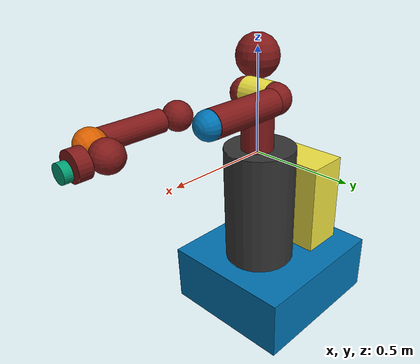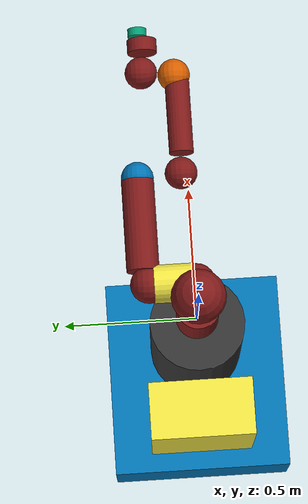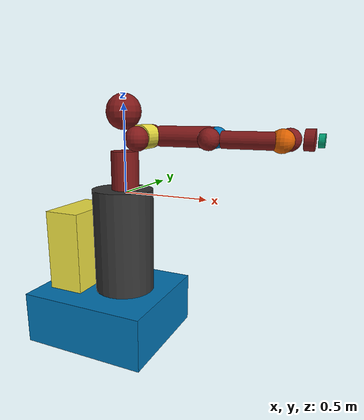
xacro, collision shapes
<?xml version="1.0" ?>
<robot name="sawyer" xmlns:xacro="http://www.ros.org/wiki/xacro">

  <xacro:arg name="gazebo" default="false"/>
  <xacro:arg name="pedestal" default="true"/>
  <xacro:arg name="static" default="true"/>
  <xacro:arg name="electric_gripper" default="false"/>
  <!-- Sawyer Base URDF -->
  <xacro:include filename="$(find sawyer_robot)/urdf/sawyer_base.urdf_rviz.xacro">
    <xacro:arg name="gazebo" value="${gazebo}"/>
    <xacro:arg name="pedestal" value="${pedestal}"/>
  </xacro:include>
  <xacro:if value="$(arg gazebo)">
  <xacro:include filename="$(find sawyer_robot)/urdf/sawyer_base.gazebo.xacro">
    <xacro:arg name="static" value="${static}"/>
    <xacro:arg name="pedestal" value="${pedestal}"/>
  </xacro:include>
  </xacro:if>
  <!-- Electric Gripper End Effector -->
  <xacro:if value="$(arg electric_gripper)">
  <xacro:include filename="$(find sawyer_robot)/urdf/sawyer_electric_gripper.urdf.xacro">
    <xacro:arg name="gazebo" value="${gazebo}"/>
  </xacro:include>
  </xacro:if>

</robot>

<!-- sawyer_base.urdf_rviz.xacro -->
<robot name="sawyer" xmlns:xacro="http://www.ros.org/wiki/xacro">

  <xacro:arg name="gazebo" default="false"/>
  <xacro:arg name="pedestal" default="true"/>
  <material name="black">
    <color rgba="0 0 0 1"/>
  </material>
  <material name="darkgray">
    <color rgba=".2 .2 .2 1"/>
  </material>
  <material name="darkred">
    <color rgba=".5 .1 .1 1"/>
  </material>
  <material name="sawyer_red">
    <color rgba=".5 .1 .1 1"/>
  </material>
  <material name="sawyer_gray">
    <color rgba="0.75294 0.75294 0.75294 1"/>
  </material>prefix="" joint_limited="true"
  <!--base_link-->
  <link name="base"/>
  <link name="torso">
    <visual>
      <origin rpy="0 0 0" xyz="0 0 0"/>
      <geometry>
        <box size="0.001 0.001 0.001"/>
      </geometry>
      <material name="darkgray">
        <color rgba=".2 .2 .2 1"/>
      </material>
    </visual>
<xacro:unless value="$(arg gazebo)">
    <inertial>
      <origin rpy="0 0 0" xyz="0.000000 0.000000 0.000000"/>
      <mass value="0.0001"/>
      <inertia ixx="1e-08" ixy="0"
               ixz="0" iyy="1e-08"
               iyz="0" izz="1e-08"/>
    </inertial>
</xacro:unless>
  </link>
<!--pedestal link-->
<xacro:if value="$(arg pedestal)">
  <link name="pedestal">
    <visual>
      <origin rpy="1.57079632679 0 -1.57079632679"
              xyz="0.26 0.345 -0.91488"/>
      <geometry>
        <mesh filename="package://sawyer_robot/meshes/sawyer_pv/pedestal.DAE"/>
      </geometry>
      <material name="darkgray"/>
    </visual>
    <collision>
      <origin rpy="0 0 0" xyz="-0.02 0 -0.29"/>
      <geometry>
        <cylinder length="0.62" radius="0.18"/>
      </geometry>
    </collision>
    <inertial>
      <origin rpy="0 0 0" xyz="0 0 -0.5"/>
      <mass value="60.86397744"/>
      <inertia ixx="5.0635929"  ixy="0.00103417"
               ixz="0.80199628" iyy="6.08689388"
               iyz="0.00105311" izz="4.96191932"/>
    </inertial>
  </link>
  <link name="controller_box">
    <collision>
      <origin rpy="0 0 0" xyz="-0.325 0 -0.38"/>
      <geometry>
        <box size="0.22 0.4 0.53"/>
      </geometry>
    </collision>
  </link>
  <joint name="controller_box_fixed" type="fixed">
    <origin rpy="0 0 0" xyz="0.0 0.0 0.0"/>
    <parent link="base"/>
    <child link="controller_box"/>
  </joint>
  <link name="pedestal_feet">
    <collision>
      <origin rpy="0 0 0" xyz="-0.1225 0 -0.758"/>
      <geometry>
        <box size="0.77 0.7 0.31"/>
      </geometry>
    </collision>
  </link>
  <joint name="pedestal_feet_fixed" type="fixed">
    <origin rpy="0 0 0" xyz="0.0 0.0 0.0"/>
    <parent link="base"/>
    <child link="pedestal_feet"/>
  </joint>
  <joint name="pedestal_fixed" type="fixed">
    <origin rpy="0 0 0" xyz="0.0 0.0 0.0"/>
    <parent link="base"/>
    <child link="pedestal"/>
  </joint>
</xacro:if>
  <joint name="right_arm_mount" type="fixed">
    <origin rpy="0 0 0" xyz="0.0 0.0 0.0"/>
    <parent link="base"/>
    <child link="right_arm_base_link"/>
  </joint>
  <joint name="torso_t0" type="fixed">
    <origin rpy="0 0 0" xyz="0 0 0"/>
    <parent link="base"/>
    <child link="torso"/>
  </joint>
<!--right arm base link-->
  <link name="right_arm_base_link">
    <inertial>
      <origin rpy="0 0 0" xyz="-0.0006241 -2.8025E-05 0.065404"/>
      <mass value="2.0687"/>
      <inertia ixx="0.0067599"   ixy="-4.2024E-05"
               ixz="-6.1904E-07" iyy="0.0067877"
               iyz="1.5888E-05"  izz="0.0074031"/>
    </inertial>
    <visual>
      <origin rpy="0 0 0" xyz="0 0 0"/>
      <geometry>
        <mesh filename="package://sawyer_robot/meshes/sawyer_pv/base.DAE"/>
      </geometry>
      <material name="sawyer_red"/>
    </visual>
    <collision>
      <origin rpy="0 0 0" xyz="0 0 0.12"/>
      <geometry>
        <cylinder length="0.24" radius="0.08"/>
      </geometry>
    </collision>
  </link>
 <!--right_l0 link-->
  <link name="right_l0">
    <inertial>
      <origin rpy="0 0 0" xyz="0.024366 0.010969 0.14363"/>
      <mass value="5.3213"/>
      <inertia ixx="0.053314" ixy="0.0047093"
               ixz="0.011734" iyy="0.057902"
               iyz="0.0080179" izz="0.023659"/>
    </inertial>
    <visual>
      <origin rpy="0 0 0" xyz="0 0 0"/>
      <geometry>
        <mesh filename="package://sawyer_robot/meshes/sawyer_mp3/l0.DAE"/>
      </geometry>
      <material name="sawyer_red"/>
    </visual>
    <collision>
      <origin rpy="0 0 0" xyz="0.08 0 0.23"/>
      <geometry>
        <sphere radius="0.07"/>
      </geometry>
    </collision>
  </link>
  <!--right j0 joint-->
  <joint name="right_j0" type="revolute">
    <origin rpy="0 0 0" xyz="0 0 0.08"/>
    <parent link="right_arm_base_link"/>
    <child link="right_l0"/>
    <axis xyz="0 0 1"/>
    <limit effort="80.0" lower="-3.0503"
           upper="3.0503" velocity="1.74"/>
<xacro:if value="$(arg gazebo)">
    <dynamics damping="10.0" friction="5.0"/>
</xacro:if>
  </joint>
<gazebo reference="head">
  <visual>
    <material>
      <ambient>0.5 0.1 0.1 1</ambient>
      <diffuse>.5 .1 .1 1</diffuse>
      <specular>.5 .1 .1 1</specular>
      <emissive>0.0 0.0 0.0 0.0</emissive>
    </material>
  </visual>
</gazebo>
 <!--head lcd link-->
  <link name="head">
    <inertial>
      <origin rpy="0 0 0" xyz="0.0053207 -2.6549E-05 0.1021"/>
      <mass value="1.5795"/>
      <inertia ixx="0.011833"   ixy="-4.4669E-06"
               ixz="4.9425E-05" iyy="0.0082709"
               iyz="4.2124E-07" izz="0.0049661"/>
    </inertial>
    <visual>
      <origin rpy="0 0 0" xyz="0 0 0"/>
      <geometry>
        <mesh filename="package://sawyer_robot/meshes/sawyer_pv/head.STL"/>
      </geometry>
      <material name="sawyer_red"/>
    </visual>
    <collision>
      <origin rpy="0 0 0" xyz="0 0 0.08"/>
      <geometry>
        <sphere radius="0.1"/>
      </geometry>
    </collision>
  </link>
 <!-- head_pad joint-->
  <joint name="head_pan" type="revolute">
    <origin rpy="0 0 0" xyz="0 0 0.2965"/>
    <parent link="right_l0"/>
    <child link="head"/>
    <axis xyz="0 0 1"/>
    <limit effort="8" lower="-5.0952"
           upper="0.9064" velocity="1.8"/>
<xacro:if value="$(arg gazebo)">
    <dynamics damping="1.0" friction="0.5"/>
</xacro:if>
  </joint>
  <link name="right_torso_itb">
<xacro:unless value="$(arg gazebo)">
    <inertial>
      <origin rpy="0 0 0" xyz="0.000000 0.000000 0.000000"/>
      <mass value="0.0001"/>
      <inertia ixx="1e-08" ixy="0" ixz="0" iyy="1e-08" iyz="0" izz="1e-08"/>
    </inertial>
</xacro:unless>
  </link>
  <joint name="right_torso_itb" type="fixed">
    <origin rpy="0 -1.57079632679 0" xyz="-.055 0 .22"/>
    <parent link="right_l0"/>
    <child link="right_torso_itb"/>
    <axis xyz="0 0 1"/>
  </joint>
 <!--right_l1 link-->
 <link name="right_l1">
    <inertial>
      <origin rpy="0 0 0" xyz="-0.0030849 -0.026811 0.092521"/>
      <mass value="4.505"/>
      <inertia ixx="0.022398" ixy="-0.00023986"
               ixz="-0.00029362" iyy="0.014613"
               iyz="-0.0060875" izz="0.017295"/>
    </inertial>
    <visual>
      <origin rpy="0 0 0" xyz="0 0 0"/>
      <geometry>
        <mesh filename="package://sawyer_robot/meshes/sawyer_mp3/l1.DAE"/>
      </geometry>
      <material name="sawyer_red"/>
    </visual>
    <collision>
      <origin rpy="0 0 0" xyz="0 0 0.1225"/>
      <geometry>
        <sphere radius="0.07"/>
      </geometry>
    </collision>
  </link>
  <!--right_j1 joint -->
  <joint name="right_j1" type="revolute">
    <origin rpy="-1.57079632679 1.57079632679 0" xyz="0.081 0.05 0.237"/>
    <parent link="right_l0"/>
    <child link="right_l1"/>
    <axis xyz="0 0 1"/>
    <limit effort="80.0" lower="-3.8095" upper="2.2736" velocity="1.328"/>
<xacro:if value="$(arg gazebo)">
    <dynamics damping="5.0" friction="2.0"/>
</xacro:if>
  </joint>
 <!--right_l2 link-->
  <link name="right_l2">
    <inertial>
      <origin rpy="0 0 0" xyz="-0.00016044 -0.014967 0.13582"/>
      <mass value="1.745"/>
      <inertia ixx="0.025506" ixy="4.4101E-06"
               ixz="1.4955E-05" iyy="0.0253"
               iyz="-0.0033204" izz="0.0034179"/>
    </inertial>
    <visual>
      <origin rpy="0 0 0" xyz="0 0 0"/>
      <geometry>
        <mesh filename="package://sawyer_robot/meshes/sawyer_pv/l2.DAE"/>
      </geometry>
      <material name="sawyer_red"/>
    </visual>
    <collision>
      <origin rpy="0 0 0" xyz="0 0 0.08"/>
      <geometry>
        <cylinder length="0.34" radius="0.06"/>
      </geometry>
    </collision>
  </link>
 <!--right_j2 joint-->
  <joint name="right_j2" type="revolute">
    <origin rpy="1.57079632679 0 0" xyz="0 -0.14 0.1425"/>
    <parent link="right_l1"/>
    <child link="right_l2"/>
    <axis xyz="0 0 1"/>
    <limit effort="40.0" lower="-3.0426" upper="3.0426" velocity="1.957"/>
<xacro:if value="$(arg gazebo)">
    <dynamics damping="5.0" friction="2.0"/>
</xacro:if>
  </joint>
 <!--right_l3 link-->
  <link name="right_l3">
    <inertial>
      <origin rpy="0 0 0" xyz="-0.0048135 -0.0281 -0.084154"/>
      <mass value="2.5097"/>
      <inertia ixx="0.01016" ixy="-9.7452E-06"
               ixz="0.00026624" iyy="0.0065685"
               iyz="0.0030316" izz="0.0069078"/>
    </inertial>
    <visual>
      <origin rpy="0 0 0" xyz="0 0 0"/>
      <geometry>
        <mesh filename="package://sawyer_robot/meshes/sawyer_pv/l3.DAE"/>
      </geometry>
      <material name="sawyer_red"/>
    </visual>
    <collision>
      <origin rpy="0 0 0" xyz="0 -0.01 -0.12"/>
      <geometry>
        <sphere radius="0.06"/>
      </geometry>
    </collision>
  </link>
 <!--joint j3 link-->
  <joint name="right_j3" type="revolute">
    <origin rpy="-1.57079632679 0 0" xyz="0 -0.042 0.26"/>
    <parent link="right_l2"/>
    <child link="right_l3"/>
    <axis xyz="0 0 1"/>
    <limit effort="40.0" lower="-3.0439" upper="3.0439" velocity="1.957"/>
 <xacro:if value="$(arg gazebo)">
    <dynamics damping="1.0" friction="0.5"/>
</xacro:if>
  </joint>
 <!--right-l4 link-->
  <link name="right_l4">
    <inertial>
      <origin rpy="0 0 0" xyz="-0.0018844 0.0069001 0.1341"/>
      <mass value="1.1136"/>
      <inertia ixx="0.013557" ixy="1.8109E-05"
               ixz="0.00013523" iyy="0.013555"
               iyz="0.0010561" izz="0.0013658"/>
    </inertial>
    <visual>
      <origin rpy="0 0 0" xyz="0 0 0"/>
      <geometry>
        <mesh filename="package://sawyer_robot/meshes/sawyer_pv/l4.DAE"/>
      </geometry>
      <material name="sawyer_red"/>
    </visual>
    <collision>
      <origin rpy="0 0 0" xyz="0 0 0.11"/>
      <geometry>
        <cylinder length="0.30" radius="0.045"/>
      </geometry>
    </collision>
  </link>
 <!--right j4 joint-->
  <joint name="right_j4" type="revolute">
    <origin rpy="1.57079632679 0 0" xyz="0 -0.125 -0.1265"/>
    <parent link="right_l3"/>
    <child link="right_l4"/>
    <axis xyz="0 0 1"/>
    <limit effort="9.0" lower="-3.14" upper="3.14" velocity="3.485"/>
    <dynamics damping="0.7"/>
<xacro:if value="$(arg gazebo)">
    <dynamics damping="2.0" friction="1.0"/>
</xacro:if>
  </joint>
  <link name="right_arm_itb">
<xacro:unless value="$(arg gazebo)">
    <inertial>
      <origin rpy="0 0 0" xyz="0.000000 0.000000 0.000000"/>
      <mass value="0.0001"/>
      <inertia ixx="1e-08" ixy="0"
               ixz="0" iyy="1e-08"
               iyz="0" izz="1e-08"/>
    </inertial>
</xacro:unless>
  </link>
  <joint name="right_arm_itb" type="fixed">
    <origin rpy="0 -1.57079632679 0" xyz="-.055 0 .075"/>
    <parent link="right_l4"/>
    <child link="right_arm_itb"/>
    <axis xyz="0 0 1"/>
  </joint>

<gazebo reference="right_l5">
  <visual>
    <material>
      <ambient>0.5 0.1 0.1 1</ambient>
      <diffuse>.5 .1 .1 1</diffuse>
      <specular>.5 .1 .1 1</specular>
      <emissive>0.0 0.0 0.0 0.0</emissive>
    </material>
  </visual>
</gazebo>
  <!--right l5 link-->
  <link name="right_l5">
    <inertial>
      <origin rpy="0 0 0" xyz="0.0061133 -0.023697 0.076416"/>
      <mass value="1.5625"/>
      <inertia ixx="0.0047328" ixy="0.00011526"
               ixz="4.6269E-05" iyy="0.0029676"
               iyz="-0.0011557" izz="0.0031762"/>
    </inertial>
    <visual>
      <origin rpy="0 0 0" xyz="0 0 0"/>
      <geometry>
        <mesh filename="package://sawyer_robot/meshes/sawyer_pv/l5.STL"/>
      </geometry>
      <material name="sawyer_red"/>
    </visual>
    <collision>
      <origin rpy="0 0 0" xyz="0 0 0.1"/>
      <geometry>
        <sphere radius="0.06"/>
      </geometry>
    </collision>
  </link>
 <!--right j5 joint-->
  <joint name="right_j5" type="revolute">
    <origin rpy="-1.57079632679 0 0" xyz="0 0.031 0.275"/>
    <parent link="right_l4"/>
    <child link="right_l5"/>
    <axis xyz="0 0 1"/>
    <limit effort="9.0" lower="-2.9761"
           upper="2.9761" velocity="3.485"/>
<xacro:if value="$(arg gazebo)">
    <dynamics damping="1.0" friction="0.5"/>
</xacro:if>
  </joint>
 <!--camera link-->
  <link name="right_hand_camera"/>
  <joint name="right_hand_camera" type="fixed">
    <origin rpy="0 1.57079632679 0" xyz="0.039552 -0.033 0.0695"/>
    <parent link="right_l5"/>
    <child link="right_hand_camera"/>
    <axis xyz="0 0 0"/>
  </joint>
  <link name="right_wrist"/>
  <joint name="right_wrist" type="fixed">
    <origin rpy="1.57079632679 0 0" xyz="0 0 0.10541"/>
    <parent link="right_l5"/>
    <child link="right_wrist"/>
    <axis xyz="0 0 0"/>
  </joint>
 <!--right l6 link-->
  <link name="right_l6">
    <inertial>
      <origin rpy="0 0 0" xyz="-8.0726E-06 0.0085838 -0.0049566"/>
      <mass value="0.3292"/>
      <inertia ixx="0.00031105" ixy="1.4771E-06"
               ixz="-3.7074E-07" iyy="0.00021549"
               iyz="-8.4533E-06" izz="0.00035976"/>
    </inertial>
    <visual>
      <origin rpy="0 0 0" xyz="0 0 0"/>
      <geometry>
        <mesh filename="package://sawyer_robot/meshes/sawyer_mp1/l6.DAE"/>
      </geometry>
      <material name="sawyer_red"/>
    </visual>
    <collision>
      <origin rpy="0 0 0" xyz="0 0.015 -0.01"/>
      <geometry>
        <cylinder length="0.05" radius="0.055"/>
      </geometry>
    </collision>
  </link>
 <!--right j6 joint-->
  <joint name="right_j6" type="revolute">
    <origin rpy="-1.57079632679 -0.17453 3.1416"
            xyz="0 -0.11 0.1053"/>
    <parent link="right_l5"/>
    <child link="right_l6"/>
    <axis xyz="0 0 1"/>
    <xacro:if value="$(arg gazebo)">
    <limit effort="9.0" lower="-6.3"
           upper="6.3" velocity="4.545"/>
    <dynamics damping="0.7" friction="0.5"/>
    </xacro:if>
    <xacro:unless value="$(arg gazebo)">
    <limit effort="9.0" lower="-6"
           upper="6" velocity="4.545"/>
           <dynamics damping="0.7" friction="0.5"/>
    </xacro:unless>
  </joint>

  <!--d415_camera link-->

  <link name="right_hand">
    <collision>
      <origin rpy="0 0 0" xyz="0 0 0.02"/>
      <geometry>
        <cylinder length="0.03" radius="0.035"/>
      </geometry>
    </collision>
<xacro:if value="$(arg gazebo)">
    <inertial>
      <origin rpy="0 0 0" xyz="0 0.1 0"/>
      <mass value="0.01"/>
      <inertia ixx="0.01" ixy="0.01"
               ixz="0.01" iyy="0.01"
               iyz="0.01" izz="0.01"/>
  </inertial>
</xacro:if>
<xacro:unless value="$(arg gazebo)">
    <inertial>
      <origin rpy="0 0 0" xyz="1.0E-08 1.0E-08 1.0E-08"/>
      <mass value="1.0E-08"/>
      <inertia ixx="1.0E-08" ixy="1.0E-08"
               ixz="1.0E-08" iyy="1.0E-08"
               iyz="1.0E-08" izz="1.0E-08"/>
    </inertial>
</xacro:unless>
  </link>
  <joint name="right_hand" type="fixed">
    <origin rpy="0 0 1.570796" xyz="0 0 0.0245"/>
    <axis xyz="0 0 1"/>
    <parent link="right_l6"/>
    <child link="right_hand"/>
  </joint>
  <link name="right_l1_2">
<xacro:unless value="$(arg gazebo)">
    <inertial>
      <origin rpy="0 0 0" xyz="1.0E-08 1.0E-08 1.0E-08"/>
      <mass value="1.0E-08"/>
      <inertia ixx="1.0E-08" ixy="1.0E-08"
               ixz="1.0E-08" iyy="1.0E-08"
               iyz="1.0E-08" izz="1.0E-08"/>
    </inertial>
</xacro:unless>
    <collision>
      <origin rpy="0 0 0" xyz="0 0 0.035"/>
      <geometry>
        <cylinder length="0.14" radius="0.07"/>
      </geometry>
    </collision>
  </link>
  <joint name="right_j1_2" type="fixed">
    <origin rpy="0 0 0" xyz="0 0 0"/>
    <parent link="right_l1"/>
    <child link="right_l1_2"/>
    <axis xyz="0 0 1"/>
  </joint>
  <link name="right_l2_2">
<xacro:unless value="$(arg gazebo)">
    <inertial>
      <origin rpy="0 0 0" xyz="1.0E-08 1.0E-08 1.0E-08"/>
      <mass value="1.0E-08"/>
      <inertia ixx="1.0E-08" ixy="1.0E-08"
               ixz="1.0E-08" iyy="1.0E-08"
               iyz="1.0E-08" izz="1.0E-08"/>
    </inertial>
</xacro:unless>
    <collision>
      <origin rpy="0 0 0" xyz="0 0 0.26"/>
      <geometry>
        <sphere radius="0.06"/>
      </geometry>
    </collision>
  </link>
  <joint name="right_j2_2" type="fixed">
    <origin rpy="0 0 0" xyz="0 0 0"/>
    <parent link="right_l2"/>
    <child link="right_l2_2"/>
    <axis xyz="0 0 1"/>
  </joint>
  <link name="right_l4_2">
<xacro:unless value="$(arg gazebo)">
    <inertial>
      <origin rpy="0 0 0" xyz="1.0E-08 1.0E-08 1.0E-08"/>
      <mass value="1.0E-08"/>
      <inertia ixx="1.0E-08" ixy="1.0E-08"
               ixz="1.0E-08" iyy="1.0E-08"
               iyz="1.0E-08" izz="1.0E-08"/>
    </inertial>
</xacro:unless>
    <collision>
      <origin rpy="0 0 0" xyz="0 0.01 0.26"/>
      <geometry>
        <sphere radius="0.06"/>
      </geometry>
    </collision>
  </link>
  <joint name="right_j4_2" type="fixed">
    <origin rpy="0 0 0" xyz="0 0 0"/>
    <parent link="right_l4"/>
    <child link="right_l4_2"/>
    <axis xyz="0 0 1"/>
  </joint>
  <link name="screen">
    <visual>
      <origin rpy="0 0 0" xyz="0 0 0"/>
      <geometry>
        <box size="0.24 0.14 0.002"/>
      </geometry>
      <material name="darkgray"/>
    </visual>
    <collision>
      <origin rpy="0 0 0" xyz="0 0 0"/>
      <geometry>
        <sphere radius="0.001"/>
      </geometry>
    </collision>
<xacro:unless value="$(arg gazebo)">
    <inertial>
      <origin rpy="0 0 0" xyz="0 0 0"/>
      <mass value="0.0001"/>
      <inertia ixx="1e-08" ixy="0"
               ixz="0" iyy="1e-08"
               iyz="0" izz="1e-08"/>
    </inertial>
</xacro:unless>
  </link>
  <joint name="display_joint" type="fixed">
    <origin rpy="1.57079632679 0 1.57079632679" xyz="0.03 0.0 0.105"/>
    <parent link="head"/>
    <child link="screen"/>
  </joint>
  <link name="head_camera"/>
  <joint name="head_camera" type="fixed">
    <origin rpy="-2.1293 0 -1.57079632679" xyz="0.0228027 0 0.216572"/>
    <parent link="head"/>
    <child link="head_camera"/>
    <axis xyz="0 0 0"/>
  </joint>

 <!-- Transmissions -->
  <!-- Right Arm -->
  <transmission name="right_tran0">
    <type>transmission_interface/SimpleTransmission</type>
    <joint name="right_j0">
      <hardwareInterface>hardware_interface/EffortJointInterface</hardwareInterface>
    </joint>
    <actuator name="right_motor0">
      <hardwareInterface>hardware_interface/EffortJointInterface</hardwareInterface>
      <mechanicalReduction>1</mechanicalReduction>
    </actuator>
  </transmission>
  <transmission name="right_tran1">
    <type>transmission_interface/SimpleTransmission</type>
    <joint name="right_j1">
      <hardwareInterface>hardware_interface/EffortJointInterface</hardwareInterface>
    </joint>
    <actuator name="right_motor1">
      <hardwareInterface>hardware_interface/EffortJointInterface</hardwareInterface>
      <mechanicalReduction>1</mechanicalReduction>
    </actuator>
  </transmission>
  <transmission name="right_tran2">
    <type>transmission_interface/SimpleTransmission</type>
    <joint name="right_j2">
      <hardwareInterface>hardware_interface/EffortJointInterface</hardwareInterface>
    </joint>
    <actuator name="right_motor2">
      <hardwareInterface>hardware_interface/EffortJointInterface</hardwareInterface>
      <mechanicalReduction>1</mechanicalReduction>
    </actuator>
  </transmission>
  <transmission name="right_tran3">
    <type>transmission_interface/SimpleTransmission</type>
    <joint name="right_j3">
      <hardwareInterface>hardware_interface/EffortJointInterface</hardwareInterface>
    </joint>
    <actuator name="right_motor3">
      <hardwareInterface>hardware_interface/EffortJointInterface</hardwareInterface>
      <mechanicalReduction>1</mechanicalReduction>
    </actuator>
  </transmission>
  <transmission name="right_tran4">
    <type>transmission_interface/SimpleTransmission</type>
    <joint name="right_j4">
      <hardwareInterface>hardware_interface/EffortJointInterface</hardwareInterface>
    </joint>
    <actuator name="right_motor4">
      <hardwareInterface>hardware_interface/EffortJointInterface</hardwareInterface>
      <mechanicalReduction>1</mechanicalReduction>
    </actuator>
  </transmission>
  <transmission name="right_tran5">
    <type>transmission_interface/SimpleTransmission</type>
    <joint name="right_j5">
      <hardwareInterface>hardware_interface/EffortJointInterface</hardwareInterface>
    </joint>
    <actuator name="right_motor5">
      <hardwareInterface>hardware_interface/EffortJointInterface</hardwareInterface>
      <mechanicalReduction>1</mechanicalReduction>
    </actuator>
  </transmission>
  <transmission name="right_tran6">
    <type>transmission_interface/SimpleTransmission</type>
    <joint name="right_j6">
      <hardwareInterface>hardware_interface/EffortJointInterface</hardwareInterface>
    </joint>
    <actuator name="right_motor6">
      <hardwareInterface>hardware_interface/EffortJointInterface</hardwareInterface>
      <mechanicalReduction>1</mechanicalReduction>
    </actuator>
  </transmission>
   <!-- Head -->
  <transmission name="head0">
    <type>transmission_interface/SimpleTransmission</type>
    <joint name="head_pan">
      <hardwareInterface>hardware_interface/EffortJointInterface</hardwareInterface>
    </joint>
    <actuator name="head_motor0">
      <hardwareInterface>hardware_interface/EffortJointInterface</hardwareInterface>
      <mechanicalReduction>1</mechanicalReduction>
    </actuator>
  </transmission>
</robot>
